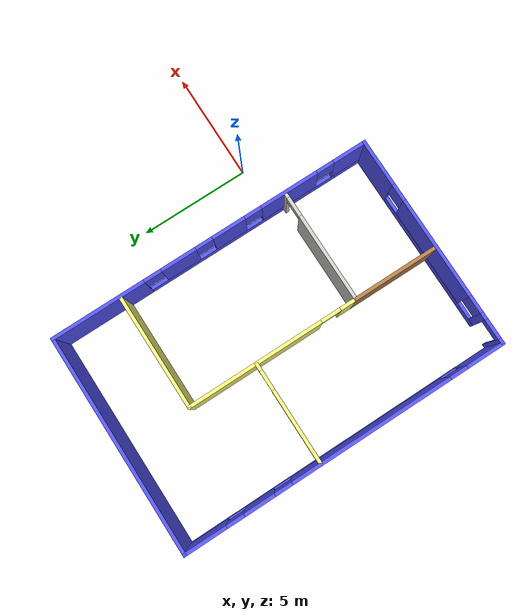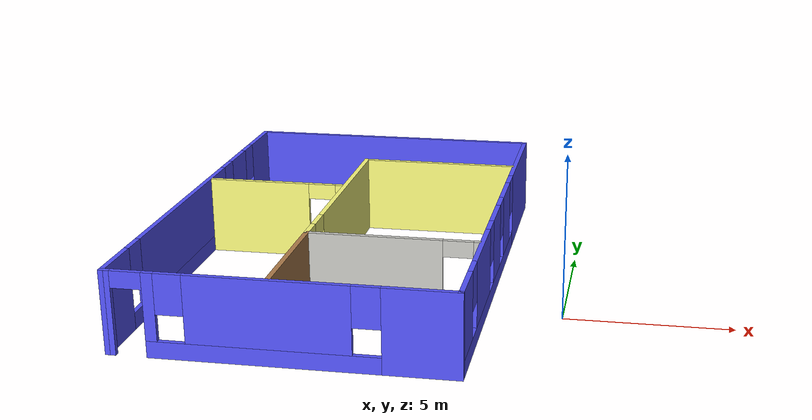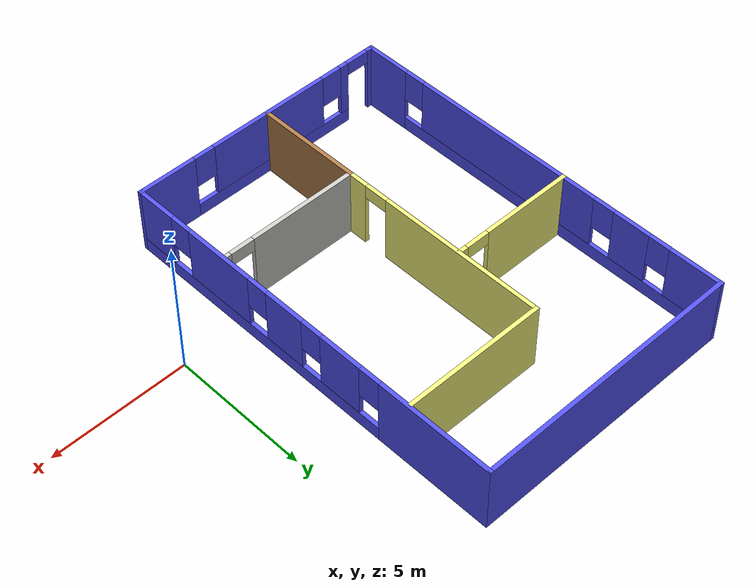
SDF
<?xml version='1.0'?>
<sdf version='1.6'>
  <model name='future_group_ofc'>
    <pose frame=''>-7.23578 2.86531 0 0 -0 0</pose>
    <link name='Wall_10'>
      <collision name='Wall_10_Collision'>
        <geometry>
          <box>
            <size>10 0.15 2.5</size>
          </box>
        </geometry>
        <pose frame=''>0 0 1.25 0 -0 0</pose>
      </collision>
      <visual name='Wall_10_Visual'>
        <pose frame=''>0 0 1.25 0 -0 0</pose>
        <geometry>
          <box>
            <size>10 0.15 2.5</size>
          </box>
        </geometry>
        <material>
          <script>
            <uri>file://media/materials/scripts/gazebo.material</uri>
            <name>Gazebo/Grey</name>
          </script>
          <ambient>0.333333 0.333333 1 1</ambient>
        </material>
        <meta>
          <layer>0</layer>
        </meta>
      </visual>
      <pose frame=''>0.001389 7.425 0 0 -0 0</pose>
    </link>
    <link name='Wall_15'>
      <pose frame=''>4.92639 0 0 0 0 -1.5708</pose>
      <visual name='Wall_15_Visual_0'>
        <pose frame=''>-5.33986 0 1.25 0 -0 0</pose>
        <geometry>
          <box>
            <size>4.32027 0.15 2.5</size>
          </box>
        </geometry>
        <material>
          <script>
            <uri>file://media/materials/scripts/gazebo.material</uri>
            <name>Gazebo/Grey</name>
          </script>
          <ambient>0.333333 0.333333 1 1</ambient>
        </material>
        <meta>
          <layer>0</layer>
        </meta>
      </visual>
      <collision name='Wall_15_Collision_0'>
        <geometry>
          <box>
            <size>4.32027 0.15 2.5</size>
          </box>
        </geometry>
        <pose frame=''>-5.33986 0 1.25 0 -0 0</pose>
      </collision>
      <visual name='Wall_15_Visual_1'>
        <pose frame=''>2.16013 0 0.25 0 -0 0</pose>
        <geometry>
          <box>
            <size>10.6797 0.15 0.5</size>
          </box>
        </geometry>
        <material>
          <script>
            <uri>file://media/materials/scripts/gazebo.material</uri>
            <name>Gazebo/Grey</name>
          </script>
          <ambient>0.333333 0.333333 1 1</ambient>
        </material>
        <meta>
          <layer>0</layer>
        </meta>
      </visual>
      <collision name='Wall_15_Collision_1'>
        <geometry>
          <box>
            <size>10.6797 0.15 0.5</size>
          </box>
        </geometry>
        <pose frame=''>2.16013 0 0.25 0 -0 0</pose>
      </collision>
      <visual name='Wall_15_Visual_2'>
        <pose frame=''>-1.56309 0 1.5 0 -0 0</pose>
        <geometry>
          <box>
            <size>1.63329 0.15 2</size>
          </box>
        </geometry>
        <material>
          <script>
            <uri>file://media/materials/scripts/gazebo.material</uri>
            <name>Gazebo/Grey</name>
          </script>
          <ambient>0.333333 0.333333 1 1</ambient>
        </material>
        <meta>
          <layer>0</layer>
        </meta>
      </visual>
      <collision name='Wall_15_Collision_2'>
        <geometry>
          <box>
            <size>1.63329 0.15 2</size>
          </box>
        </geometry>
        <pose frame=''>-1.56309 0 1.5 0 -0 0</pose>
      </collision>
      <visual name='Wall_15_Visual_3'>
        <pose frame=''>0.824718 0 1.5 0 -0 0</pose>
        <geometry>
          <box>
            <size>1.54232 0.15 2</size>
          </box>
        </geometry>
        <material>
          <script>
            <uri>file://media/materials/scripts/gazebo.material</uri>
            <name>Gazebo/Grey</name>
          </script>
          <ambient>0.333333 0.333333 1 1</ambient>
        </material>
        <meta>
          <layer>0</layer>
        </meta>
      </visual>
      <collision name='Wall_15_Collision_3'>
        <geometry>
          <box>
            <size>1.54232 0.15 2</size>
          </box>
        </geometry>
        <pose frame=''>0.824718 0 1.5 0 -0 0</pose>
      </collision>
      <visual name='Wall_15_Visual_4'>
        <pose frame=''>3.74694 0 1.5 0 -0 0</pose>
        <geometry>
          <box>
            <size>2.70211 0.15 2</size>
          </box>
        </geometry>
        <material>
          <script>
            <uri>file://media/materials/scripts/gazebo.material</uri>
            <name>Gazebo/Grey</name>
          </script>
          <ambient>0.333333 0.333333 1 1</ambient>
        </material>
        <meta>
          <layer>0</layer>
        </meta>
      </visual>
      <collision name='Wall_15_Collision_4'>
        <geometry>
          <box>
            <size>2.70211 0.15 2</size>
          </box>
        </geometry>
        <pose frame=''>3.74694 0 1.5 0 -0 0</pose>
      </collision>
      <visual name='Wall_15_Visual_5'>
        <pose frame=''>6.699 0 1.5 0 -0 0</pose>
        <geometry>
          <box>
            <size>1.60201 0.15 2</size>
          </box>
        </geometry>
        <material>
          <script>
            <uri>file://media/materials/scripts/gazebo.material</uri>
            <name>Gazebo/Grey</name>
          </script>
          <ambient>0.333333 0.333333 1 1</ambient>
        </material>
        <meta>
          <layer>0</layer>
        </meta>
      </visual>
      <collision name='Wall_15_Collision_5'>
        <geometry>
          <box>
            <size>1.60201 0.15 2</size>
          </box>
        </geometry>
        <pose frame=''>6.699 0 1.5 0 -0 0</pose>
      </collision>
      <visual name='Wall_15_Visual_6'>
        <pose frame=''>-2.77973 0 1.9 0 -0 0</pose>
        <geometry>
          <box>
            <size>0.8 0.15 1.2</size>
          </box>
        </geometry>
        <material>
          <script>
            <uri>file://media/materials/scripts/gazebo.material</uri>
            <name>Gazebo/Grey</name>
          </script>
          <ambient>0.333333 0.333333 1 1</ambient>
        </material>
        <meta>
          <layer>0</layer>
        </meta>
      </visual>
      <collision name='Wall_15_Collision_6'>
        <geometry>
          <box>
            <size>0.8 0.15 1.2</size>
          </box>
        </geometry>
        <pose frame=''>-2.77973 0 1.9 0 -0 0</pose>
      </collision>
      <visual name='Wall_15_Visual_7'>
        <pose frame=''>-0.346443 0 1.9 0 -0 0</pose>
        <geometry>
          <box>
            <size>0.8 0.15 1.2</size>
          </box>
        </geometry>
        <material>
          <script>
            <uri>file://media/materials/scripts/gazebo.material</uri>
            <name>Gazebo/Grey</name>
          </script>
          <ambient>0.333333 0.333333 1 1</ambient>
        </material>
        <meta>
          <layer>0</layer>
        </meta>
      </visual>
      <collision name='Wall_15_Collision_7'>
        <geometry>
          <box>
            <size>0.8 0.15 1.2</size>
          </box>
        </geometry>
        <pose frame=''>-0.346443 0 1.9 0 -0 0</pose>
      </collision>
      <visual name='Wall_15_Visual_8'>
        <pose frame=''>1.99588 0 1.9 0 -0 0</pose>
        <geometry>
          <box>
            <size>0.8 0.15 1.2</size>
          </box>
        </geometry>
        <material>
          <script>
            <uri>file://media/materials/scripts/gazebo.material</uri>
            <name>Gazebo/Grey</name>
          </script>
          <ambient>0.333333 0.333333 1 1</ambient>
        </material>
        <meta>
          <layer>0</layer>
        </meta>
      </visual>
      <collision name='Wall_15_Collision_8'>
        <geometry>
          <box>
            <size>0.8 0.15 1.2</size>
          </box>
        </geometry>
        <pose frame=''>1.99588 0 1.9 0 -0 0</pose>
      </collision>
      <visual name='Wall_15_Visual_9'>
        <pose frame=''>5.49799 0 1.9 0 -0 0</pose>
        <geometry>
          <box>
            <size>0.8 0.15 1.2</size>
          </box>
        </geometry>
        <material>
          <script>
            <uri>file://media/materials/scripts/gazebo.material</uri>
            <name>Gazebo/Grey</name>
          </script>
          <ambient>0.333333 0.333333 1 1</ambient>
        </material>
        <meta>
          <layer>0</layer>
        </meta>
      </visual>
      <collision name='Wall_15_Collision_9'>
        <geometry>
          <box>
            <size>0.8 0.15 1.2</size>
          </box>
        </geometry>
        <pose frame=''>5.49799 0 1.9 0 -0 0</pose>
      </collision>
    </link>
    <link name='Wall_17'>
      <pose frame=''>0.001389 -7.425 0 0 -0 3.14159</pose>
      <visual name='Wall_17_Visual_0'>
        <pose frame=''>-3.90057 0 1.25 0 -0 0</pose>
        <geometry>
          <box>
            <size>2.19886 0.15 2.5</size>
          </box>
        </geometry>
        <material>
          <script>
            <uri>file://media/materials/scripts/gazebo.material</uri>
            <name>Gazebo/Grey</name>
          </script>
          <ambient>0.333333 0.333333 1 1</ambient>
        </material>
        <meta>
          <layer>0</layer>
        </meta>
      </visual>
      <collision name='Wall_17_Collision_0'>
        <geometry>
          <box>
            <size>2.19886 0.15 2.5</size>
          </box>
        </geometry>
        <pose frame=''>-3.90057 0 1.25 0 -0 0</pose>
      </collision>
      <visual name='Wall_17_Visual_1'>
        <pose frame=''>4.84462 0 1.25 0 -0 0</pose>
        <geometry>
          <box>
            <size>0.310771 0.15 2.5</size>
          </box>
        </geometry>
        <material>
          <script>
            <uri>file://media/materials/scripts/gazebo.material</uri>
            <name>Gazebo/Grey</name>
          </script>
          <ambient>0.333333 0.333333 1 1</ambient>
        </material>
        <meta>
          <layer>0</layer>
        </meta>
      </visual>
      <collision name='Wall_17_Collision_1'>
        <geometry>
          <box>
            <size>0.310771 0.15 2.5</size>
          </box>
        </geometry>
        <pose frame=''>4.84462 0 1.25 0 -0 0</pose>
      </collision>
      <visual name='Wall_17_Visual_2'>
        <pose frame=''>0.494044 0 0.25 0 -0 0</pose>
        <geometry>
          <box>
            <size>6.59037 0.15 0.5</size>
          </box>
        </geometry>
        <material>
          <script>
            <uri>file://media/materials/scripts/gazebo.material</uri>
            <name>Gazebo/Grey</name>
          </script>
          <ambient>0.333333 0.333333 1 1</ambient>
        </material>
        <meta>
          <layer>0</layer>
        </meta>
      </visual>
      <collision name='Wall_17_Collision_2'>
        <geometry>
          <box>
            <size>6.59037 0.15 0.5</size>
          </box>
        </geometry>
        <pose frame=''>0.494044 0 0.25 0 -0 0</pose>
      </collision>
      <visual name='Wall_17_Visual_3'>
        <pose frame=''>0.327779 0 1.5 0 -0 0</pose>
        <geometry>
          <box>
            <size>4.65784 0.15 2</size>
          </box>
        </geometry>
        <material>
          <script>
            <uri>file://media/materials/scripts/gazebo.material</uri>
            <name>Gazebo/Grey</name>
          </script>
          <ambient>0.333333 0.333333 1 1</ambient>
        </material>
        <meta>
          <layer>0</layer>
        </meta>
      </visual>
      <collision name='Wall_17_Collision_3'>
        <geometry>
          <box>
            <size>4.65784 0.15 2</size>
          </box>
        </geometry>
        <pose frame=''>0.327779 0 1.5 0 -0 0</pose>
      </collision>
      <visual name='Wall_17_Visual_4'>
        <pose frame=''>3.62296 0 1.5 0 -0 0</pose>
        <geometry>
          <box>
            <size>0.332531 0.15 2</size>
          </box>
        </geometry>
        <material>
          <script>
            <uri>file://media/materials/scripts/gazebo.material</uri>
            <name>Gazebo/Grey</name>
          </script>
          <ambient>0.333333 0.333333 1 1</ambient>
        </material>
        <meta>
          <layer>0</layer>
        </meta>
      </visual>
      <collision name='Wall_17_Collision_4'>
        <geometry>
          <box>
            <size>0.332531 0.15 2</size>
          </box>
        </geometry>
        <pose frame=''>3.62296 0 1.5 0 -0 0</pose>
      </collision>
      <visual name='Wall_17_Visual_5'>
        <pose frame=''>-2.40114 0 1.9 0 -0 0</pose>
        <geometry>
          <box>
            <size>0.8 0.15 1.2</size>
          </box>
        </geometry>
        <material>
          <script>
            <uri>file://media/materials/scripts/gazebo.material</uri>
            <name>Gazebo/Grey</name>
          </script>
          <ambient>0.333333 0.333333 1 1</ambient>
        </material>
        <meta>
          <layer>0</layer>
        </meta>
      </visual>
      <collision name='Wall_17_Collision_5'>
        <geometry>
          <box>
            <size>0.8 0.15 1.2</size>
          </box>
        </geometry>
        <pose frame=''>-2.40114 0 1.9 0 -0 0</pose>
      </collision>
      <visual name='Wall_17_Visual_6'>
        <pose frame=''>3.0567 0 1.9 0 -0 0</pose>
        <geometry>
          <box>
            <size>0.8 0.15 1.2</size>
          </box>
        </geometry>
        <material>
          <script>
            <uri>file://media/materials/scripts/gazebo.material</uri>
            <name>Gazebo/Grey</name>
          </script>
          <ambient>0.333333 0.333333 1 1</ambient>
        </material>
        <meta>
          <layer>0</layer>
        </meta>
      </visual>
      <collision name='Wall_17_Collision_6'>
        <geometry>
          <box>
            <size>0.8 0.15 1.2</size>
          </box>
        </geometry>
        <pose frame=''>3.0567 0 1.9 0 -0 0</pose>
      </collision>
      <visual name='Wall_17_Visual_7'>
        <pose frame=''>4.23923 0 2.25 0 -0 0</pose>
        <geometry>
          <box>
            <size>0.9 0.15 0.5</size>
          </box>
        </geometry>
        <material>
          <script>
            <uri>file://media/materials/scripts/gazebo.material</uri>
            <name>Gazebo/Grey</name>
          </script>
          <ambient>0.333333 0.333333 1 1</ambient>
        </material>
        <meta>
          <layer>0</layer>
        </meta>
      </visual>
      <collision name='Wall_17_Collision_7'>
        <geometry>
          <box>
            <size>0.9 0.15 0.5</size>
          </box>
        </geometry>
        <pose frame=''>4.23923 0 2.25 0 -0 0</pose>
      </collision>
    </link>
    <link name='Wall_19'>
      <pose frame=''>-4.92361 0 0 0 -0 1.5708</pose>
      <visual name='Wall_19_Visual_0'>
        <pose frame=''>-6.60803 0 1.25 0 -0 0</pose>
        <geometry>
          <box>
            <size>1.78394 0.15 2.5</size>
          </box>
        </geometry>
        <material>
          <script>
            <uri>file://media/materials/scripts/gazebo.material</uri>
            <name>Gazebo/Grey</name>
          </script>
          <ambient>0.333333 0.333333 1 1</ambient>
        </material>
        <meta>
          <layer>0</layer>
        </meta>
      </visual>
      <collision name='Wall_19_Collision_0'>
        <geometry>
          <box>
            <size>1.78394 0.15 2.5</size>
          </box>
        </geometry>
        <pose frame=''>-6.60803 0 1.25 0 -0 0</pose>
      </collision>
      <visual name='Wall_19_Visual_1'>
        <pose frame=''>0.891968 0 0.25 0 -0 0</pose>
        <geometry>
          <box>
            <size>13.2161 0.15 0.5</size>
          </box>
        </geometry>
        <material>
          <script>
            <uri>file://media/materials/scripts/gazebo.material</uri>
            <name>Gazebo/Grey</name>
          </script>
          <ambient>0.333333 0.333333 1 1</ambient>
        </material>
        <meta>
          <layer>0</layer>
        </meta>
      </visual>
      <collision name='Wall_19_Collision_1'>
        <geometry>
          <box>
            <size>13.2161 0.15 0.5</size>
          </box>
        </geometry>
        <pose frame=''>0.891968 0 0.25 0 -0 0</pose>
      </collision>
      <visual name='Wall_19_Visual_2'>
        <pose frame=''>-1.19994 0 1.5 0 -0 0</pose>
        <geometry>
          <box>
            <size>7.43224 0.15 2</size>
          </box>
        </geometry>
        <material>
          <script>
            <uri>file://media/materials/scripts/gazebo.material</uri>
            <name>Gazebo/Grey</name>
          </script>
          <ambient>0.333333 0.333333 1 1</ambient>
        </material>
        <meta>
          <layer>0</layer>
        </meta>
      </visual>
      <collision name='Wall_19_Collision_2'>
        <geometry>
          <box>
            <size>7.43224 0.15 2</size>
          </box>
        </geometry>
        <pose frame=''>-1.19994 0 1.5 0 -0 0</pose>
      </collision>
      <visual name='Wall_19_Visual_3'>
        <pose frame=''>4.01911 0 1.5 0 -0 0</pose>
        <geometry>
          <box>
            <size>1.40588 0.15 2</size>
          </box>
        </geometry>
        <material>
          <script>
            <uri>file://media/materials/scripts/gazebo.material</uri>
            <name>Gazebo/Grey</name>
          </script>
          <ambient>0.333333 0.333333 1 1</ambient>
        </material>
        <meta>
          <layer>0</layer>
        </meta>
      </visual>
      <collision name='Wall_19_Collision_3'>
        <geometry>
          <box>
            <size>1.40588 0.15 2</size>
          </box>
        </geometry>
        <pose frame=''>4.01911 0 1.5 0 -0 0</pose>
      </collision>
      <visual name='Wall_19_Visual_4'>
        <pose frame=''>6.51103 0 1.5 0 -0 0</pose>
        <geometry>
          <box>
            <size>1.97795 0.15 2</size>
          </box>
        </geometry>
        <material>
          <script>
            <uri>file://media/materials/scripts/gazebo.material</uri>
            <name>Gazebo/Grey</name>
          </script>
          <ambient>0.333333 0.333333 1 1</ambient>
        </material>
        <meta>
          <layer>0</layer>
        </meta>
      </visual>
      <collision name='Wall_19_Collision_4'>
        <geometry>
          <box>
            <size>1.97795 0.15 2</size>
          </box>
        </geometry>
        <pose frame=''>6.51103 0 1.5 0 -0 0</pose>
      </collision>
      <visual name='Wall_19_Visual_5'>
        <pose frame=''>-5.31606 0 1.9 0 -0 0</pose>
        <geometry>
          <box>
            <size>0.8 0.15 1.2</size>
          </box>
        </geometry>
        <material>
          <script>
            <uri>file://media/materials/scripts/gazebo.material</uri>
            <name>Gazebo/Grey</name>
          </script>
          <ambient>0.333333 0.333333 1 1</ambient>
        </material>
        <meta>
          <layer>0</layer>
        </meta>
      </visual>
      <collision name='Wall_19_Collision_5'>
        <geometry>
          <box>
            <size>0.8 0.15 1.2</size>
          </box>
        </geometry>
        <pose frame=''>-5.31606 0 1.9 0 -0 0</pose>
      </collision>
      <visual name='Wall_19_Visual_6'>
        <pose frame=''>2.91617 0 1.9 0 -0 0</pose>
        <geometry>
          <box>
            <size>0.8 0.15 1.2</size>
          </box>
        </geometry>
        <material>
          <script>
            <uri>file://media/materials/scripts/gazebo.material</uri>
            <name>Gazebo/Grey</name>
          </script>
          <ambient>0.333333 0.333333 1 1</ambient>
        </material>
        <meta>
          <layer>0</layer>
        </meta>
      </visual>
      <collision name='Wall_19_Collision_6'>
        <geometry>
          <box>
            <size>0.8 0.15 1.2</size>
          </box>
        </geometry>
        <pose frame=''>2.91617 0 1.9 0 -0 0</pose>
      </collision>
      <visual name='Wall_19_Visual_7'>
        <pose frame=''>5.12205 0 1.9 0 -0 0</pose>
        <geometry>
          <box>
            <size>0.8 0.15 1.2</size>
          </box>
        </geometry>
        <material>
          <script>
            <uri>file://media/materials/scripts/gazebo.material</uri>
            <name>Gazebo/Grey</name>
          </script>
          <ambient>0.333333 0.333333 1 1</ambient>
        </material>
        <meta>
          <layer>0</layer>
        </meta>
      </visual>
      <collision name='Wall_19_Collision_7'>
        <geometry>
          <box>
            <size>0.8 0.15 1.2</size>
          </box>
        </geometry>
        <pose frame=''>5.12205 0 1.9 0 -0 0</pose>
      </collision>
    </link>
    <link name='Wall_21'>
      <collision name='Wall_21_Collision'>
        <geometry>
          <box>
            <size>4 0.15 2.5</size>
          </box>
        </geometry>
        <pose frame=''>0 0 1.25 0 -0 0</pose>
      </collision>
      <visual name='Wall_21_Visual'>
        <pose frame=''>0 0 1.25 0 -0 0</pose>
        <geometry>
          <box>
            <size>4 0.15 2.5</size>
          </box>
        </geometry>
        <material>
          <script>
            <uri>file://media/materials/scripts/gazebo.material</uri>
            <name>Gazebo/Wood</name>
          </script>
          <ambient>1 1 0 1</ambient>
        </material>
        <meta>
          <layer>0</layer>
        </meta>
      </visual>
      <pose frame=''>-0.280908 -5.46049 0 0 -0 1.5708</pose>
    </link>
    <link name='Wall_22'>
      <pose frame=''>2.26909 -3.53549 0 0 -0 0</pose>
      <visual name='Wall_22_Visual_0'>
        <pose frame=''>-0.561142 0 1.25 0 -0 0</pose>
        <geometry>
          <box>
            <size>4.12772 0.15 2.5</size>
          </box>
        </geometry>
        <material>
          <script>
            <uri>file://media/materials/scripts/gazebo.material</uri>
            <name>Gazebo/CeilingTiled</name>
          </script>
          <ambient>1 1 0 1</ambient>
        </material>
        <meta>
          <layer>0</layer>
        </meta>
      </visual>
      <collision name='Wall_22_Collision_0'>
        <geometry>
          <box>
            <size>4.12772 0.15 2.5</size>
          </box>
        </geometry>
        <pose frame=''>-0.561142 0 1.25 0 -0 0</pose>
      </collision>
      <visual name='Wall_22_Visual_1'>
        <pose frame=''>2.51386 0 1.25 0 -0 0</pose>
        <geometry>
          <box>
            <size>0.222284 0.15 2.5</size>
          </box>
        </geometry>
        <material>
          <script>
            <uri>file://media/materials/scripts/gazebo.material</uri>
            <name>Gazebo/CeilingTiled</name>
          </script>
          <ambient>1 1 0 1</ambient>
        </material>
        <meta>
          <layer>0</layer>
        </meta>
      </visual>
      <collision name='Wall_22_Collision_1'>
        <geometry>
          <box>
            <size>0.222284 0.15 2.5</size>
          </box>
        </geometry>
        <pose frame=''>2.51386 0 1.25 0 -0 0</pose>
      </collision>
      <visual name='Wall_22_Visual_2'>
        <pose frame=''>1.95272 0 2.25 0 -0 0</pose>
        <geometry>
          <box>
            <size>0.9 0.15 0.5</size>
          </box>
        </geometry>
        <material>
          <script>
            <uri>file://media/materials/scripts/gazebo.material</uri>
            <name>Gazebo/CeilingTiled</name>
          </script>
          <ambient>1 1 0 1</ambient>
        </material>
        <meta>
          <layer>0</layer>
        </meta>
      </visual>
      <collision name='Wall_22_Collision_2'>
        <geometry>
          <box>
            <size>0.9 0.15 0.5</size>
          </box>
        </geometry>
        <pose frame=''>1.95272 0 2.25 0 -0 0</pose>
      </collision>
    </link>
    <link name='Wall_24'>
      <pose frame=''>-0.280908 0.389506 0 0 -0 1.5708</pose>
      <visual name='Wall_24_Visual_0'>
        <pose frame=''>-3.58825 0 1.25 0 -0 0</pose>
        <geometry>
          <box>
            <size>0.8235 0.15 2.5</size>
          </box>
        </geometry>
        <material>
          <script>
            <uri>file://media/materials/scripts/gazebo.material</uri>
            <name>Gazebo/Grey</name>
          </script>
          <ambient>1 1 0.498039 1</ambient>
        </material>
        <meta>
          <layer>0</layer>
        </meta>
      </visual>
      <collision name='Wall_24_Collision_0'>
        <geometry>
          <box>
            <size>0.8235 0.15 2.5</size>
          </box>
        </geometry>
        <pose frame=''>-3.58825 0 1.25 0 -0 0</pose>
      </collision>
      <visual name='Wall_24_Visual_1'>
        <pose frame=''>0.86175 0 1.25 0 -0 0</pose>
        <geometry>
          <box>
            <size>6.2765 0.15 2.5</size>
          </box>
        </geometry>
        <material>
          <script>
            <uri>file://media/materials/scripts/gazebo.material</uri>
            <name>Gazebo/Grey</name>
          </script>
          <ambient>1 1 0.498039 1</ambient>
        </material>
        <meta>
          <layer>0</layer>
        </meta>
      </visual>
      <collision name='Wall_24_Collision_1'>
        <geometry>
          <box>
            <size>6.2765 0.15 2.5</size>
          </box>
        </geometry>
        <pose frame=''>0.86175 0 1.25 0 -0 0</pose>
      </collision>
      <visual name='Wall_24_Visual_2'>
        <pose frame=''>-2.7265 0 2.25 0 -0 0</pose>
        <geometry>
          <box>
            <size>0.9 0.15 0.5</size>
          </box>
        </geometry>
        <material>
          <script>
            <uri>file://media/materials/scripts/gazebo.material</uri>
            <name>Gazebo/Grey</name>
          </script>
          <ambient>1 1 0.498039 1</ambient>
        </material>
        <meta>
          <layer>0</layer>
        </meta>
      </visual>
      <collision name='Wall_24_Collision_2'>
        <geometry>
          <box>
            <size>0.9 0.15 0.5</size>
          </box>
        </geometry>
        <pose frame=''>-2.7265 0 2.25 0 -0 0</pose>
      </collision>
    </link>
    <link name='Wall_25'>
      <collision name='Wall_25_Collision'>
        <geometry>
          <box>
            <size>5.25 0.15 2.5</size>
          </box>
        </geometry>
        <pose frame=''>0 0 1.25 0 -0 0</pose>
      </collision>
      <visual name='Wall_25_Visual'>
        <pose frame=''>0 0 1.25 0 -0 0</pose>
        <geometry>
          <box>
            <size>5.25 0.15 2.5</size>
          </box>
        </geometry>
        <material>
          <script>
            <uri>file://media/materials/scripts/gazebo.material</uri>
            <name>Gazebo/Grey</name>
          </script>
          <ambient>1 1 0.498039 1</ambient>
        </material>
        <meta>
          <layer>0</layer>
        </meta>
      </visual>
      <pose frame=''>2.26909 4.31451 0 0 -0 0</pose>
    </link>
    <link name='Wall_27'>
      <pose frame=''>-2.62639 1.18786 0 0 -0 3.14159</pose>
      <visual name='Wall_27_Visual_0'>
        <pose frame=''>-2.19864 0 1.25 0 -0 0</pose>
        <geometry>
          <box>
            <size>0.352711 0.15 2.5</size>
          </box>
        </geometry>
        <material>
          <script>
            <uri>file://media/materials/scripts/gazebo.material</uri>
            <name>Gazebo/Grey</name>
          </script>
          <ambient>1 1 0.498039 1</ambient>
        </material>
        <meta>
          <layer>0</layer>
        </meta>
      </visual>
      <collision name='Wall_27_Collision_0'>
        <geometry>
          <box>
            <size>0.352711 0.15 2.5</size>
          </box>
        </geometry>
        <pose frame=''>-2.19864 0 1.25 0 -0 0</pose>
      </collision>
      <visual name='Wall_27_Visual_1'>
        <pose frame=''>0.626356 0 1.25 0 -0 0</pose>
        <geometry>
          <box>
            <size>3.49729 0.15 2.5</size>
          </box>
        </geometry>
        <material>
          <script>
            <uri>file://media/materials/scripts/gazebo.material</uri>
            <name>Gazebo/Grey</name>
          </script>
          <ambient>1 1 0.498039 1</ambient>
        </material>
        <meta>
          <layer>0</layer>
        </meta>
      </visual>
      <collision name='Wall_27_Collision_1'>
        <geometry>
          <box>
            <size>3.49729 0.15 2.5</size>
          </box>
        </geometry>
        <pose frame=''>0.626356 0 1.25 0 -0 0</pose>
      </collision>
      <visual name='Wall_27_Visual_2'>
        <pose frame=''>-1.57229 0 2.25 0 -0 0</pose>
        <geometry>
          <box>
            <size>0.9 0.15 0.5</size>
          </box>
        </geometry>
        <material>
          <script>
            <uri>file://media/materials/scripts/gazebo.material</uri>
            <name>Gazebo/Grey</name>
          </script>
          <ambient>1 1 0.498039 1</ambient>
        </material>
        <meta>
          <layer>0</layer>
        </meta>
      </visual>
      <collision name='Wall_27_Collision_2'>
        <geometry>
          <box>
            <size>0.9 0.15 0.5</size>
          </box>
        </geometry>
        <pose frame=''>-1.57229 0 2.25 0 -0 0</pose>
      </collision>
    </link>
    <static>1</static>
  </model>
</sdf>
